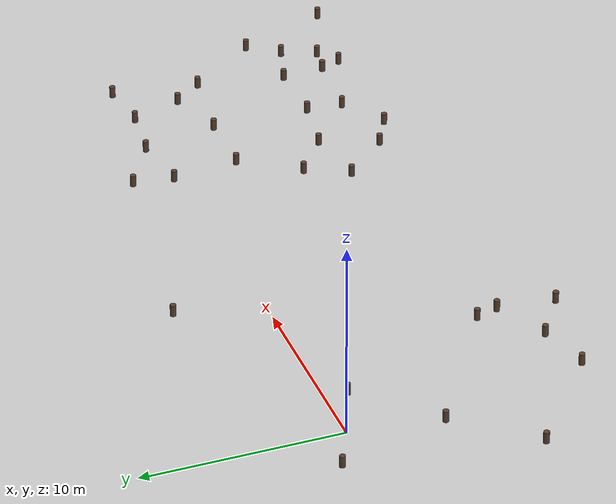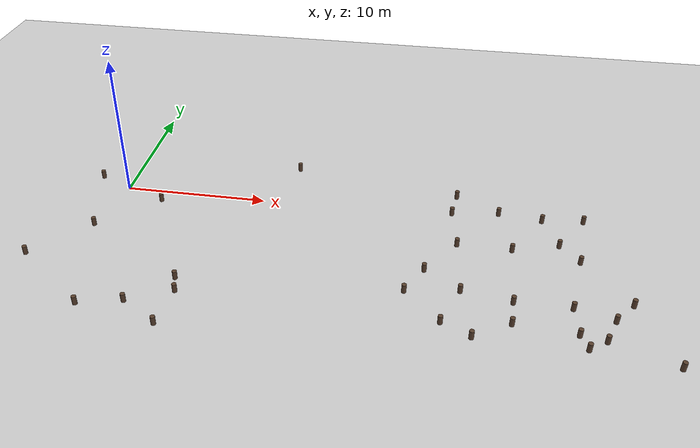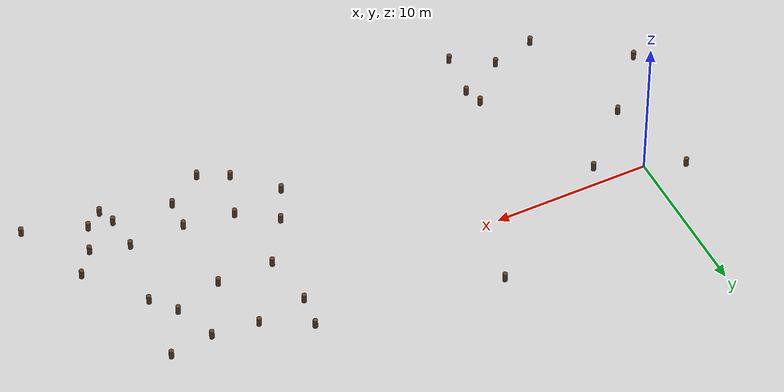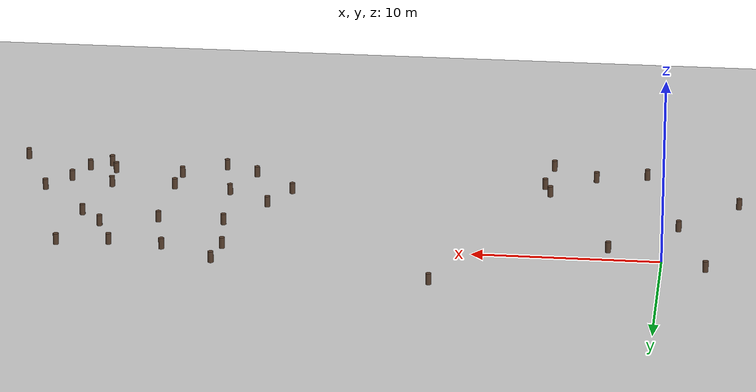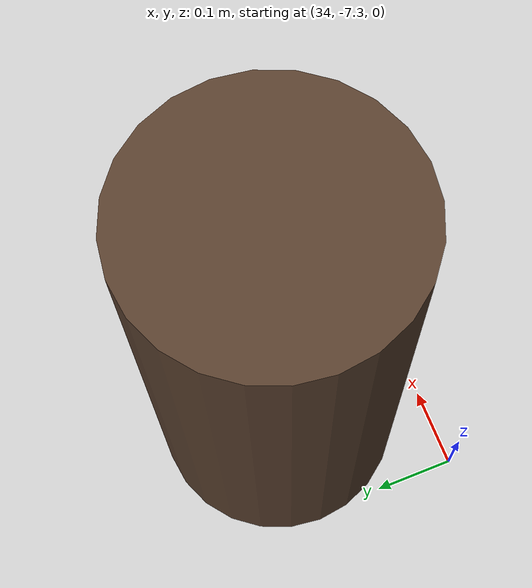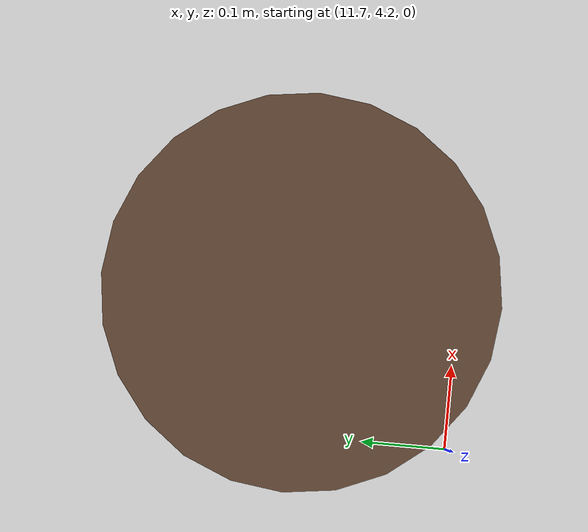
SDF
<?xml version="1.0"?>
<sdf version="1.6">
  <world name="orchard_world">
    <include>
      <uri>model://sun</uri>
    </include>

    <include>
      <uri>model://ground_plane</uri>
    </include>

    <!-- Trees: 33 includes of model://tree_trunk -->
    <include>
      <uri>model://tree_trunk</uri>
      <name>tree_0000</name>
      <pose>6.521565 -13.126572 0 0 0 0</pose>
    </include>
    <include>
      <uri>model://tree_trunk</uri>
      <name>tree_0001</name>
      <pose>1.315243 -12.249279 0 0 0 0</pose>
    </include>
    <include>
      <uri>model://tree_trunk</uri>
      <name>tree_0002</name>
      <pose>35.991341 -11.817470 0 0 0 0</pose>
    </include>
    <include>
      <uri>model://tree_trunk</uri>
      <name>tree_0003</name>
      <pose>4.091209 -11.567424 0 0 0 0</pose>
    </include>
    <include>
      <uri>model://tree_trunk</uri>
      <name>tree_0004</name>
      <pose>24.651716 -11.285201 0 0 0 0</pose>
    </include>
    <include>
      <uri>model://tree_trunk</uri>
      <name>tree_0005</name>
      <pose>31.135643 -11.209885 0 0 0 0</pose>
    </include>
    <include>
      <uri>model://tree_trunk</uri>
      <name>tree_0006</name>
      <pose>32.227955 -10.412958 0 0 0 0</pose>
    </include>
    <include>
      <uri>model://tree_trunk</uri>
      <name>tree_0007</name>
      <pose>22.851971 -10.352146 0 0 0 0</pose>
    </include>
    <include>
      <uri>model://tree_trunk</uri>
      <name>tree_0008</name>
      <pose>6.833194 -10.213868 0 0 0 0</pose>
    </include>
    <include>
      <uri>model://tree_trunk</uri>
      <name>tree_0009</name>
      <pose>30.728367 -10.152867 0 0 0 0</pose>
    </include>
    <include>
      <uri>model://tree_trunk</uri>
      <name>tree_0010</name>
      <pose>26.951294 -9.841650 0 0 0 0</pose>
    </include>
    <include>
      <uri>model://tree_trunk</uri>
      <name>tree_0011</name>
      <pose>6.472735 -9.059805 0 0 0 0</pose>
    </include>
    <include>
      <uri>model://tree_trunk</uri>
      <name>tree_0012</name>
      <pose>32.932697 -8.654316 0 0 0 0</pose>
    </include>
    <include>
      <uri>model://tree_trunk</uri>
      <name>tree_0013</name>
      <pose>-3.842155 -8.272951 0 0 0 0</pose>
    </include>
    <include>
      <uri>model://tree_trunk</uri>
      <name>tree_0014</name>
      <pose>20.565525 -7.987542 0 0 0 0</pose>
    </include>
    <include>
      <uri>model://tree_trunk</uri>
      <name>tree_0015</name>
      <pose>27.084835 -7.975886 0 0 0 0</pose>
    </include>
    <include>
      <uri>model://tree_trunk</uri>
      <name>tree_0016</name>
      <pose>30.578337 -7.949728 0 0 0 0</pose>
    </include>
    <include>
      <uri>model://tree_trunk</uri>
      <name>tree_0017</name>
      <pose>23.935318 -7.450634 0 0 0 0</pose>
    </include>
    <include>
      <uri>model://tree_trunk</uri>
      <name>tree_0018</name>
      <pose>34.141541 -7.113765 0 0 0 0</pose>
    </include>
    <include>
      <uri>model://tree_trunk</uri>
      <name>tree_0019</name>
      <pose>21.654919 -5.818055 0 0 0 0</pose>
    </include>
    <include>
      <uri>model://tree_trunk</uri>
      <name>tree_0020</name>
      <pose>-0.714306 -4.598887 0 0 0 0</pose>
    </include>
    <include>
      <uri>model://tree_trunk</uri>
      <name>tree_0021</name>
      <pose>31.410410 -3.501325 0 0 0 0</pose>
    </include>
    <include>
      <uri>model://tree_trunk</uri>
      <name>tree_0022</name>
      <pose>27.160042 -2.927572 0 0 0 0</pose>
    </include>
    <include>
      <uri>model://tree_trunk</uri>
      <name>tree_0023</name>
      <pose>23.615564 -2.904112 0 0 0 0</pose>
    </include>
    <include>
      <uri>model://tree_trunk</uri>
      <name>tree_0024</name>
      <pose>30.207172 -2.004403 0 0 0 0</pose>
    </include>
    <include>
      <uri>model://tree_trunk</uri>
      <name>tree_0025</name>
      <pose>2.856335 -1.131533 0 0 0 0</pose>
    </include>
    <include>
      <uri>model://tree_trunk</uri>
      <name>tree_0026</name>
      <pose>23.183540 0.527935 0 0 0 0</pose>
    </include>
    <include>
      <uri>model://tree_trunk</uri>
      <name>tree_0027</name>
      <pose>29.253023 0.618980 0 0 0 0</pose>
    </include>
    <include>
      <uri>model://tree_trunk</uri>
      <name>tree_0028</name>
      <pose>32.020065 0.946091 0 0 0 0</pose>
    </include>
    <include>
      <uri>model://tree_trunk</uri>
      <name>tree_0029</name>
      <pose>26.355558 0.981446 0 0 0 0</pose>
    </include>
    <include>
      <uri>model://tree_trunk</uri>
      <name>tree_0030</name>
      <pose>-2.342198 1.063212 0 0 0 0</pose>
    </include>
    <include>
      <uri>model://tree_trunk</uri>
      <name>tree_0031</name>
      <pose>23.470091 2.596749 0 0 0 0</pose>
    </include>
    <include>
      <uri>model://tree_trunk</uri>
      <name>tree_0032</name>
      <pose>11.821669 4.378514 0 0 0 0</pose>
    </include>
  </world>
</sdf>

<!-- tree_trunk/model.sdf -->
<sdf version="1.6">
  <model name="tree_trunk">
    <static>true</static>
    <link name="link">
      <collision name="trunk_collision">
        <pose>0 0 0.30 0 0 0</pose>
        <geometry>
          <cylinder>
            <radius>0.15</radius>
            <length>0.60</length>
          </cylinder>
        </geometry>
      </collision>
      <visual name="trunk_visual">
        <pose>0 0 0.30 0 0 0</pose>
        <geometry>
          <cylinder>
            <radius>0.15</radius>
            <length>0.60</length>
          </cylinder>
        </geometry>
        <material>
          <ambient>0.25 0.18 0.12 1</ambient>
          <diffuse>0.35 0.25 0.18 1</diffuse>
        </material>
      </visual>
    </link>
  </model>
</sdf>
